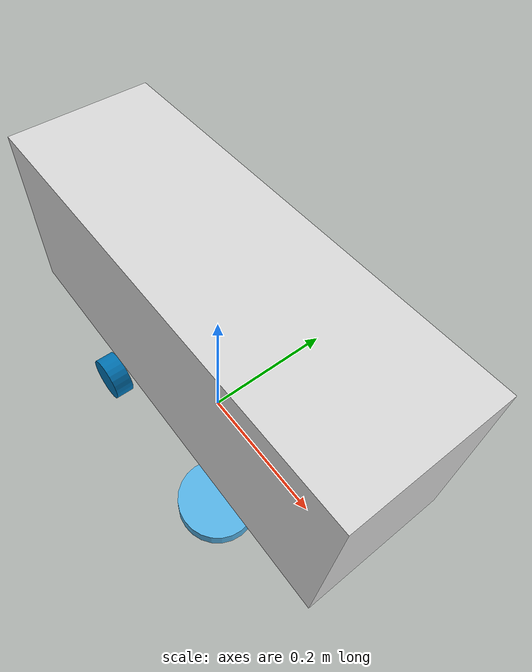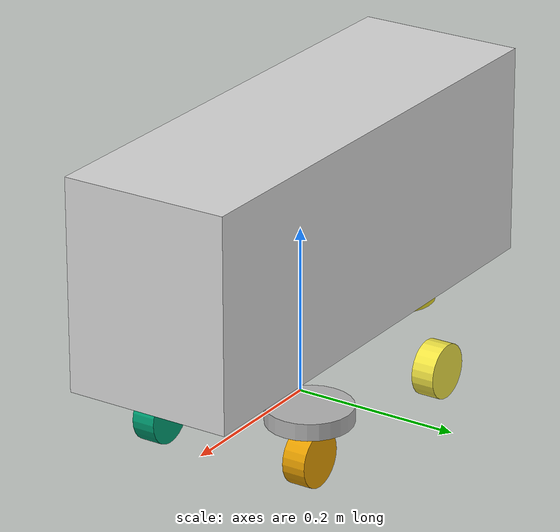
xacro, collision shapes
<?xml version="1.0"?>
<robot name="drivex" xmlns:xacro="http://www.ros.org/wiki/xacro">
    <!--
    Robot model taken from
    http://wiki.ros.org/pr2_mechanism/Tutorials/SImple%20URDF-Controller%20Example
    -->
    <xacro:include filename="$(find drivex_description)/urdf/drivex_wheel.urdf.xacro" />
    <xacro:include filename="$(find drivex_description)/urdf/drivex_ackermann_macro.urdf.xacro" />
    <xacro:include filename="$(find drivex_description)/urdf/sensors_macro.urdf.xacro" />
    <xacro:property name="deg_to_rad" value="0.01745329251994329577" />
    <!-- Constants for robot dimensions -->
    <xacro:property name="length" value="0.6" />  <!-- Length between front & rear wheels -->
    <xacro:property name="width" value="0.2" /> <!-- width between left & right wheels -->
    <xacro:property name="height" value="0.5" />
    <xacro:property name="length_offset" value="0" />
    <xacro:property name="height_offset" value="0" />
    <xacro:property name="wheel_radius" value="0.033" />
    <xacro:property name="wheel_thickness" value="0.028" />
    <xacro:property name="board_height" value="0.15" />
    <!--  we need two because the car isn't a square-->
    <xacro:property name="axel_offset_x" value="0.5" /> <!-- Space btw top of beam and the each joint -->
    <xacro:property name="axel_offset_y" value="0" /> <!-- Space btw top of beam and the each joint -->
    <xacro:property name="steer_offset" value="0.02" /> <!-- Link 1 -->

    <!-- Add car macro -->
    <xacro:drivex length="${length}" width="${width}" height="${height}"
        board_height="${board_height}" wheel_radius="${wheel_radius}" />

    <!-- Add sensors-->
    <xacro:usb_cam name="bottom_front_camera" x="0.1" y="0" z="0.18" roll="0" pitch="0.5" yaw="0" />

    <!-- Add gazebo functionalities-->
    <xacro:include filename="$(find drivex_description)/urdf/drivex.gazebo.macro.xacro" />

    <!-- joints for ackermann_steering_controller -->
    <xacro:front_steer name="front" parent="base" radius="${wheel_radius}"
        thickness="${wheel_thickness}"
        length="${length}" width="${width}" axel_offset="${axel_offset_x}"
        steer_height="${wheel_radius+steer_offset}">
        <origin xyz="${length/2-axel_offset_x} 0 0" rpy="${-90 * deg_to_rad} 0 ${90 * deg_to_rad}" />
    </xacro:front_steer>
    <xacro:rear_wheel name="rear" parent="base" radius="${wheel_radius}"
        thickness="${wheel_thickness}">
        <origin xyz="${-length/2+axel_offset_x} 0 0" rpy="${-90 * deg_to_rad} 0 ${-90 * deg_to_rad}" />
    </xacro:rear_wheel>

    <!-- Wheels (Keep!!) -->
    <xacro:front_wheel_lr name="front_right" parent="base" radius="${wheel_radius}"
        thickness="${wheel_thickness}"
        length="${2*length + 0.07}" width="${width}" axel_offset="${axel_offset_x}" right_left="1"
        steer_height="${wheel_radius+steer_offset}">
        <origin xyz="${length/2-axel_offset_x} ${width/2+axel_offset_y} 0"
            rpy="${-90 * deg_to_rad} 0 0" />
    </xacro:front_wheel_lr>
    <xacro:front_wheel_lr name="front_left" parent="base" radius="${wheel_radius}"
        thickness="${wheel_thickness}"
        length="${2*length + 0.07}" width="${width}" axel_offset="${axel_offset_x}" right_left="-1"
        steer_height="${wheel_radius+steer_offset}">
        <origin xyz="${length/2-axel_offset_x} ${-width/2-axel_offset_y} 0"
            rpy="${-90 * deg_to_rad} 0 0" />
    </xacro:front_wheel_lr>
    <xacro:rear_wheel_lr name="rear_right" parent="base" radius="${wheel_radius}" right_left="1"
        thickness="${wheel_thickness}">
        <origin xyz="${length/2-axel_offset_x + 0.065} ${width/2+axel_offset_y} 0"
            rpy="${-90 * deg_to_rad} 0 ${-90 * deg_to_rad}" />
    </xacro:rear_wheel_lr>
    <xacro:rear_wheel_lr name="rear_left" parent="base" radius="${wheel_radius}" right_left="-1"
        thickness="${wheel_thickness}">
        <origin xyz="${length/2-axel_offset_x + 0.065} ${-width/2-axel_offset_y} 0"
            rpy="${-90 * deg_to_rad} 0 ${90 * deg_to_rad}" />
    </xacro:rear_wheel_lr>

    <!-- Gazebo plugin for ROS Control -->
    <gazebo>
        <plugin name="gazebo_ros_control" filename="libgazebo_ros_control.so">
            <robotSimType>steer_bot_hardware_gazebo/SteerBotHardwareGazebo</robotSimType>
        </plugin>
    </gazebo>

    <!-- Colour -->
    <gazebo reference="base_footprint">
        <material>Gazebo/Purple</material>
    </gazebo>

</robot>

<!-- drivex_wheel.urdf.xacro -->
<robot xmlns:xacro="http://www.ros.org/wiki/xacro">
  <xacro:property name="steer_radius" value="0.05" /> <!-- Link 1 -->
  <xacro:property name="steer_thickness" value="0.02" /> <!-- Link 1 -->
  <xacro:property name="steer_effort" value="15.0" />
  <xacro:property name="steer_velocity" value="5.0" />
  <xacro:property name="mass" value="0.50" />
  <xacro:property name="damping" value="0" />
  <xacro:property name="friction" value="0" />

  <xacro:macro name="front_steer"
    params="name parent radius thickness length width axel_offset steer_height *origin">
    <link name="${name}_steer_link">
      <inertial>
        <origin xyz="0 0 0" rpy="0 0 0" />
        <mass value="${mass}" />
        <inertia ixx="${(mass*((3*wheel_radius*wheel_radius)+(thickness*thickness)))/12}" ixy="0"
          ixz="0"
          iyy="${(mass*((3*wheel_radius*wheel_radius)+(thickness*thickness)))/12}" iyz="0"
          izz="${(mass*wheel_radius*wheel_radius)/2}" />
      </inertial>
      <collision>
        <origin xyz="0 0 0" rpy="0 0 0" />
        <geometry>
          <cylinder radius="${steer_radius}" length="${steer_thickness}" />
        </geometry>
      </collision>
    </link>

    <joint name="${name}_steer_joint" type="revolute">
      <parent link="${parent}_link" />
      <child link="${name}_steer_link" />
      <origin xyz="${length/2-axel_offset} 0 ${steer_height}" rpy="0 0 0" />
      <axis xyz="0 0 1" />
      <limit effort="${steer_effort}"
        lower="${-180.0 * deg_to_rad}" upper="${180.0 * deg_to_rad}"
        velocity="${steer_velocity}" />
      <dynamics damping="${damping}" friction="${friction}" />
    </joint>

    <!-- Transmission is important to link the joints and the controller -->
    <transmission name="${name}_steer_joint_trans">
      <type>transmission_interface/SimpleTransmission</type>
      <actuator name="${name}_steer_joint_motor" />
      <joint name="${name}_steer_joint">
        <hardwareInterface>hardware_interface/PositionJointInterface</hardwareInterface>
        <dynamics damping="${damping}" friction="0.0" />
      </joint>
      <mechanicalReduction>1</mechanicalReduction>
      <motorTorqueConstant>1</motorTorqueConstant>
    </transmission>
    <gazebo reference="${name}_steer_link">
      <material>Gazebo/Yellow</material>
    </gazebo>
  </xacro:macro>

  <xacro:macro name="rear_wheel" params="name parent radius thickness *origin">
    <link name="${name}_wheel_link">
      <inertial>
        <origin xyz="0 0 0" rpy="0 0 0" />
        <mass value="${mass}" />
        <inertia ixx="${(mass*((3*wheel_radius*wheel_radius)+(thickness*thickness)))/12}" ixy="0"
          ixz="0"
          iyy="${(mass*((3*wheel_radius*wheel_radius)+(thickness*thickness)))/12}" iyz="0"
          izz="${(mass*wheel_radius*wheel_radius)/2}" />
      </inertial>
      <collision>
        <origin xyz="0 0 0" rpy="0 0 0" />
        <geometry>
          <cylinder radius="${wheel_radius/100}" length="${thickness/100}" />
        </geometry>
      </collision>
    </link>

    <joint name="${name}_wheel_joint" type="continuous">
      <parent link="${parent}_link" />
      <child link="${name}_wheel_link" />
      <xacro:insert_block name="origin" />
      <axis xyz="1 0 0" />
      <dynamics damping="${damping}" friction="${friction}" />
    </joint>

    <!-- Transmission is important to link the joints and the controller -->
    <transmission name="${name}_wheel_joint_trans">
      <type>transmission_interface/SimpleTransmission</type>
      <actuator name="${name}_wheel_joint_motor" />
      <joint name="${name}_wheel_joint">
        <hardwareInterface>hardware_interface/VelocityJointInterface</hardwareInterface>
        <dynamics damping="${damping}" friction="${friction}" />
      </joint>
      <mechanicalReduction>1</mechanicalReduction>
      <motorTorqueConstant>1</motorTorqueConstant>
    </transmission>
  </xacro:macro>

  <xacro:macro name="front_wheel_lr"
    params="name parent radius thickness length width axel_offset right_left steer_height *origin">
    <link name="${name}_steer_link">
      <inertial>
        <origin xyz="0 0 0" rpy="0 0 0" />
        <mass value="${mass}" />
        <inertia ixx="${(mass*((3*wheel_radius*wheel_radius)+(thickness*thickness)))/12}" ixy="0"
          ixz="0"
          iyy="${(mass*((3*wheel_radius*wheel_radius)+(thickness*thickness)))/12}" iyz="0"
          izz="${(mass*wheel_radius*wheel_radius)/2}" />
      </inertial>
      <collision>
        <origin xyz="0 0 0" rpy="0 0 0" />
        <axis xyz="${right_left * -1} 0 0" />
        <geometry>
          <cylinder radius="${steer_radius}" length="${steer_thickness}" />
        </geometry>
      </collision>
    </link>

    <joint name="${name}_steer_joint" type="revolute">
      <parent link="${parent}_link" />
      <child link="${name}_steer_link" />
      <origin xyz="${length/2-axel_offset_x} ${right_left*(width/2+axel_offset_y)} ${steer_height}"
        rpy="0 0 0" />
      <axis xyz="0 0 1" />
      <dynamics damping="${damping}" friction="${friction}" />
      <limit effort="${steer_effort}"
        lower="${-180.0 * deg_to_rad}" upper="${180.0 * deg_to_rad}"
        velocity="${steer_velocity}" />
    </joint>

    <link name="${name}_wheel_link">
      <inertial>
        <origin xyz="0 0 0" rpy="0 0 0" />
        <mass value="${mass}" />
        <inertia ixx="${(mass*((3*wheel_radius*wheel_radius)+(thickness*thickness)))/12}" ixy="0"
          ixz="0"
          iyy="${(mass*((3*wheel_radius*wheel_radius)+(thickness*thickness)))/12}" iyz="0"
          izz="${(mass*wheel_radius*wheel_radius)/2}" />
      </inertial>
      <visual>
        <origin xyz="0 0 0"
          rpy=" ${90 * deg_to_rad} ${90 * deg_to_rad} 0" />
        <geometry>
          <mesh filename="file:///$(find drivex_description)/meshes/wheel.dae" />
        </geometry>
      </visual>
      <collision>
        <origin xyz="0 0 0" rpy="${-90 * deg_to_rad} 0 ${right_left * -90 * deg_to_rad}" />
        <geometry>
          <cylinder radius="${wheel_radius}" length="${thickness}" />
        </geometry>
      </collision>
    </link>

    <joint name="${name}_wheel_joint" type="continuous">
      <parent link="${name}_steer_link" />
      <child link="${name}_wheel_link" />
      <origin xyz="0 0 ${-steer_height}"
        rpy="${-90 * deg_to_rad} 0 ${right_left * -90 * deg_to_rad}" />
      <axis xyz="${right_left * -1} 0 0" />
      <dynamics damping="${damping}" friction="${friction}" />
    </joint>

    <!-- Transmission is important to link the joints and the controller -->
    <transmission name="${name}_steer_joint_trans">
      <type>transmission_interface/SimpleTransmission</type>
      <actuator name="${name}_steer_joint_motor" />
      <joint name="${name}_steer_joint">
        <hardwareInterface>hardware_interface/EffortJointInterface</hardwareInterface>
        <dynamics damping="${damping}" friction="${friction}" />
      </joint>
      <mechanicalReduction>1</mechanicalReduction>
      <motorTorqueConstant>1</motorTorqueConstant>
    </transmission>
    <transmission name="${name}_wheel_joint_trans">
      <type>transmission_interface/SimpleTransmission</type>
      <actuator name="${name}_wheel_joint_motor" />
      <joint name="${name}_wheel_joint">
        <hardwareInterface>hardware_interface/EffortJointInterface</hardwareInterface>
        <dynamics damping="${damping}" friction="${friction}" />
      </joint>
      <mechanicalReduction>1</mechanicalReduction>
      <motorTorqueConstant>1</motorTorqueConstant>
    </transmission>

  </xacro:macro>

  <xacro:macro name="rear_wheel_lr" params="name parent radius right_left thickness *origin">
    <link name="${name}_wheel_link">
      <inertial>
        <origin xyz="0 0 0" rpy="0 0 0" />
        <mass value="${mass}" />
        <inertia ixx="${(mass*((3*wheel_radius*wheel_radius)+(thickness*thickness)))/12}" ixy="0"
          ixz="0"
          iyy="${(mass*((3*wheel_radius*wheel_radius)+(thickness*thickness)))/12}" iyz="0"
          izz="${(mass*wheel_radius*wheel_radius)/2}" />
      </inertial>
      <visual>
        <origin xyz="0 0 0"
          rpy=" ${90 * deg_to_rad} ${90 * deg_to_rad} 0" />
        <geometry>
          <mesh filename="file:///$(find drivex_description)/meshes/wheel.dae" />
        </geometry>
      </visual>
      <collision>
        <origin xyz="0 0 0" rpy="${-90 * deg_to_rad} 0 ${right_left * -90 * deg_to_rad}" />
        <geometry>
          <cylinder radius="${wheel_radius}" length="${thickness}" />
        </geometry>
      </collision>
    </link>

    <joint name="${name}_wheel_joint" type="continuous">
      <parent link="${parent}_link" />
      <child link="${name}_wheel_link" />
      <xacro:insert_block name="origin" />
      <axis xyz="${right_left * -1} 0 0" />
      <dynamics damping="${damping}" friction="${friction}" />
    </joint>

    <!-- Transmission is important to link the joints and the controller -->
    <transmission name="${name}_wheel_joint_trans">
      <type>transmission_interface/SimpleTransmission</type>
      <actuator name="${name}_wheel_joint_motor" />
      <joint name="${name}_wheel_joint">
        <hardwareInterface>hardware_interface/EffortJointInterface</hardwareInterface>
        <dynamics damping="${damping}" friction="${friction}" />
      </joint>
      <mechanicalReduction>1</mechanicalReduction>
      <motorTorqueConstant>1</motorTorqueConstant>
    </transmission>
  </xacro:macro>
</robot>

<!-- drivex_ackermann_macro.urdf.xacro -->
<robot xmlns:xacro="http://www.ros.org/wiki/xacro">
    <xacro:property name="deg_to_rad" value="0.01745329251994329577"/>
    <xacro:macro name="drivex" params="length width wheel_radius board_height height">
        <!-- Links: inertial,visual,collision -->

        <link name="base_link">
            <inertial>
                <origin xyz="0 0 0" rpy="0 -0 0"/>
                <mass value="0.26244"/>
                <inertia ixx="0.00283444" ixy="0" ixz="0" iyy="0.00039867" iyz="0" izz="0.00323293"/>
            </inertial>
            <visual>
                <origin xyz="0 0 -0.05" rpy="0 0 0"/>
                <geometry>
                    <mesh filename="file:///$(find drivex_description)/meshes/chassis.dae" scale="1 1 1"/>
                </geometry>
                <material name="material">
                    <color rgba="0.85 0.85 0.85 1"/>
                </material>
            </visual>
            <collision>
                <origin xyz="0 0 ${-wheel_radius + height/2}"/>
                <geometry>
                    <box size="${length} ${width} ${height/2}"/>
                </geometry>
            </collision>
        </link>

        <!-- In the context of an Ackermann steering vehicle (like a car), the base_footprint would typically be located at the bottom center of the vehicle, between the front and rear wheels. -->
        <link name="base_footprint">
            <collision>
                <origin xyz="0 0 0"/>
                <geometry>
                    <sphere radius="0.00000001"/>
                </geometry>
            </collision>
        </link>
        <joint name="base_footprint_joint" type="fixed">
            <origin xyz="0 0 0" rpy="0 0 0"/>
            <child link="base_link"/>
            <parent link="base_footprint"/>
        </joint>

        <!-- Car Body -->
        <link name="carbody_link">
            <inertial>
                <origin xyz="0 0 0" rpy="0 0 0"/>
                <mass value="1"/>
                <inertia ixx="0.166667" ixy="0" ixz="0" iyy="0.166667" iyz="0" izz="0.166667"/>
            </inertial>
            <visual>
                <origin xyz="0 0 -0.06" rpy="0 0 0"/>
                <geometry>
                    <mesh filename="file:///$(find drivex_description)/meshes/CarBody.dae" scale="1 1 1"/>
                </geometry>
                <material name="CarBody">
                    <color rgba="1 1 1 1"/>
                </material>
            </visual>
        </link>
        <joint name="carbody_to_base_footprint" type="fixed">
            <parent link="base_link"/>
            <child link="carbody_link"/>
            <origin xyz="0 0 0" rpy="0 0 0"/>
        </joint>

    </xacro:macro>
</robot>

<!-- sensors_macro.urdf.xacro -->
<robot xmlns:xacro="http://www.ros.org/wiki/xacro">

    <xacro:macro name="usb_cam" params="name x y z roll pitch yaw">
        <joint name="${name}_joint" type="fixed">
            <origin xyz="${x} ${y} ${z}" rpy="${roll} ${pitch} ${yaw}"/>
            <parent link="base_link"/>
            <child link="${name}_link"/>
        </joint>

        <link name="${name}_link">
            <visual>
                <geometry>
                    <box size="0.015 0.030 0.027"/>
                </geometry>
            </visual>
            <collision>
                <origin xyz="0.0 0.0 0.0" rpy="0 0 0"/>
                <geometry>
                    <box size="0.015 0.030 0.027"/>
                </geometry>
            </collision>
        </link>

        <joint name="${name}_rgb_optical_joint" type="fixed">
            <origin xyz="0 0 0" rpy="0 0 0"/>
            <parent link="${name}_link"/>
            <child link="${name}_rgb_optical_frame"/>
        </joint>
        <link name="${name}_rgb_optical_frame"/>
    </xacro:macro>

</robot>
